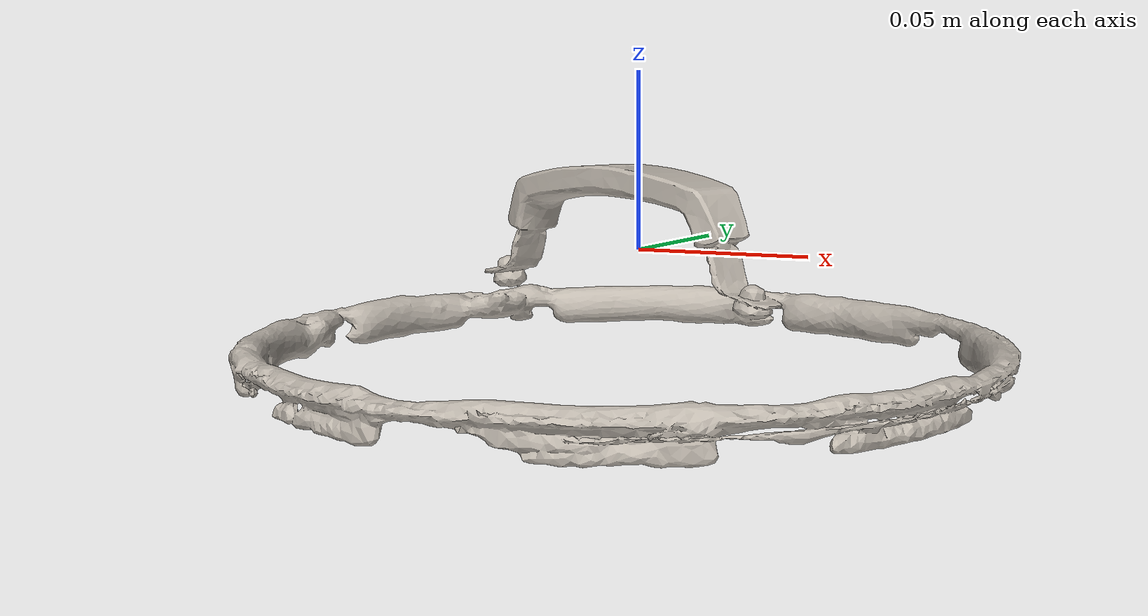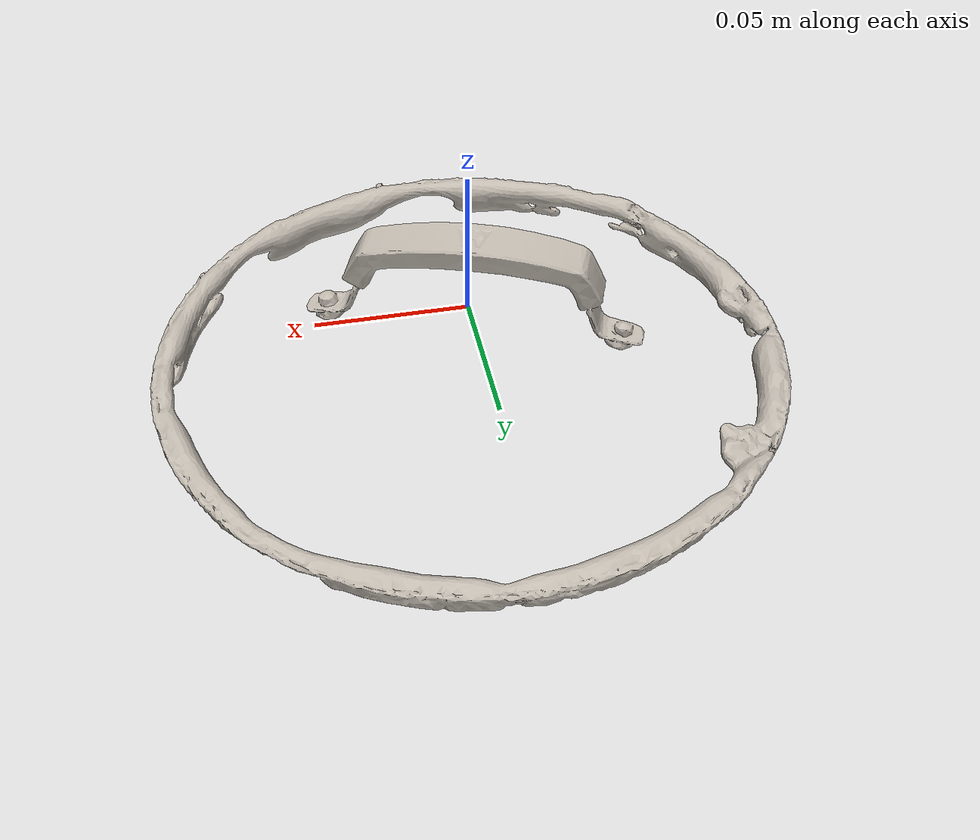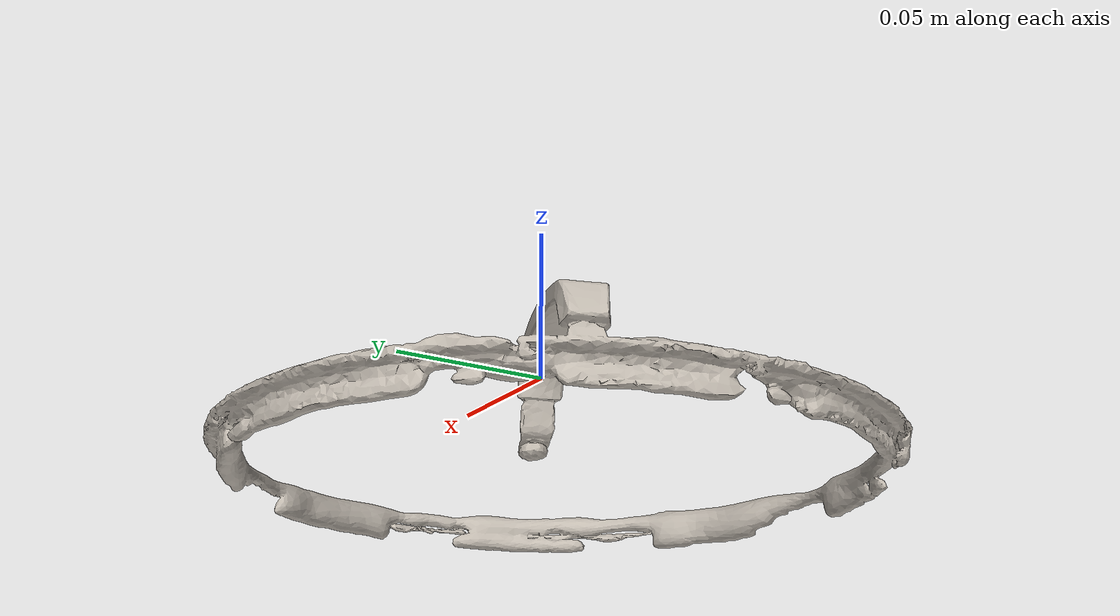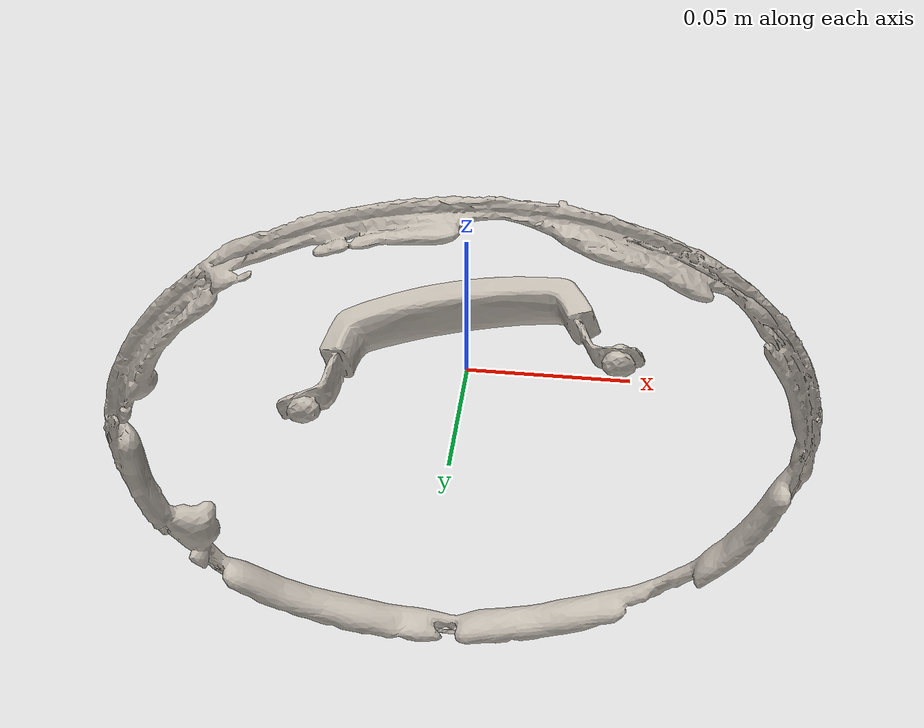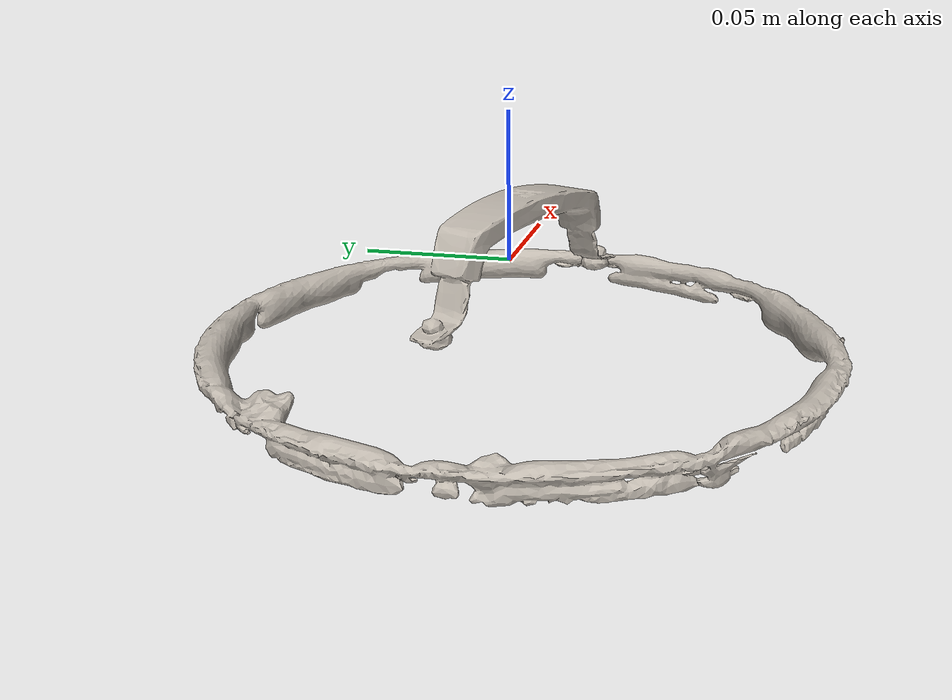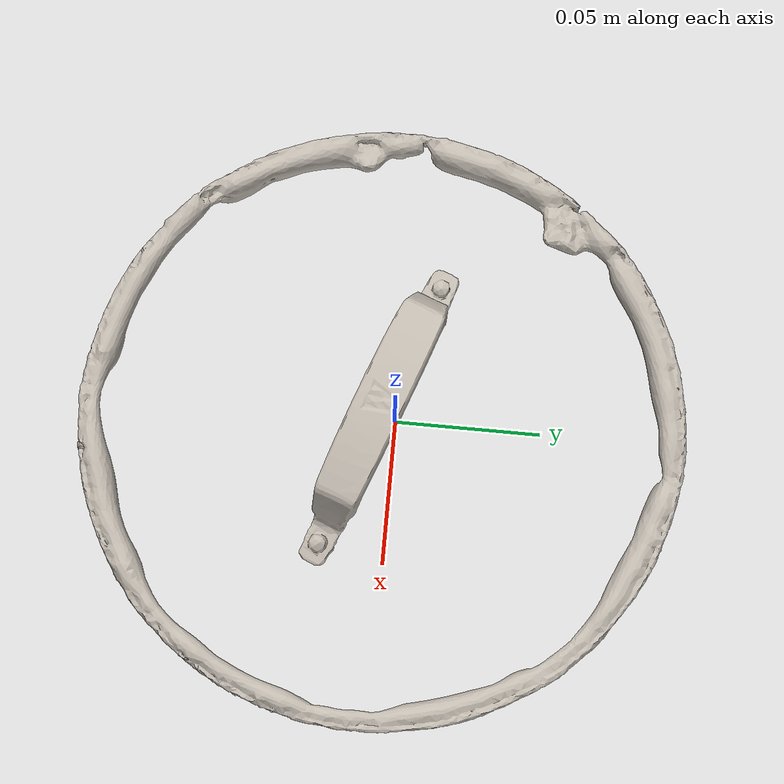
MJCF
<mujoco model="bread">
  <asset>
    <mesh file="nontextured.stl" name="obj_mesh" scale="0.8 0.8 0.8"/>
    <texture file="../../../../../textures/bread.png" type="2d" name="tex-bread" />
    <material name="bread" reflectance="0.7" texrepeat="15 15" texture="tex-bread" texuniform="true"/>
  </asset>
  <worldbody>
    <body>
      <body name="collision">
        <geom pos="-0.008872999999999992 -0.024286500000000003 -0.0330495" mesh="obj_mesh" type="mesh" solimp="0.998 0.998 0.001" solref="0.001 1" density="50" friction="0.95 0.3 0.1"  material="bread" group="1" condim="4"/>
      </body>
      <body name="visual">
        <geom pos="-0.008872999999999992 -0.024286500000000003 -0.0330495" mesh="obj_mesh" type="mesh" material="bread"  conaffinity="0" contype="0"  group="0" mass="0.0001"/>
        <geom pos="-0.008872999999999992 -0.024286500000000003 -0.0330495" mesh="obj_mesh" type="mesh" material="bread"  conaffinity="0" contype="0"  group="1" mass="0.0001"/>
      </body>
      <site rgba="0 0 0 0" size="0.005" pos="0 0 -0.0380275" name="bottom_site"/>
      <site rgba="0 0 0 0" size="0.005" pos="0 0 0.0380275" name="top_site"/>
      <site rgba="0 0 0 0" size="0.005" pos="0.134132 0.1345765 0.0380275" name="horizontal_radius_site"/>
    </body>
  </worldbody>
</mujoco>
